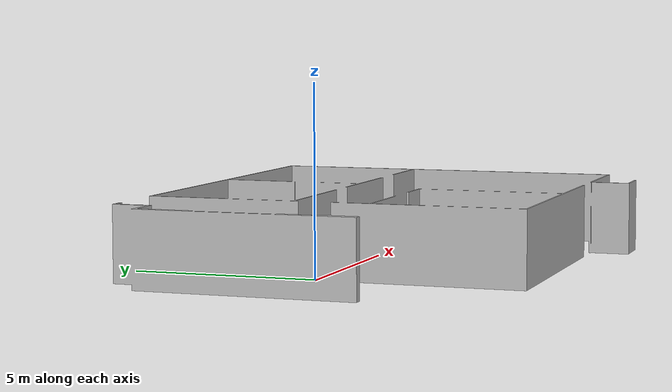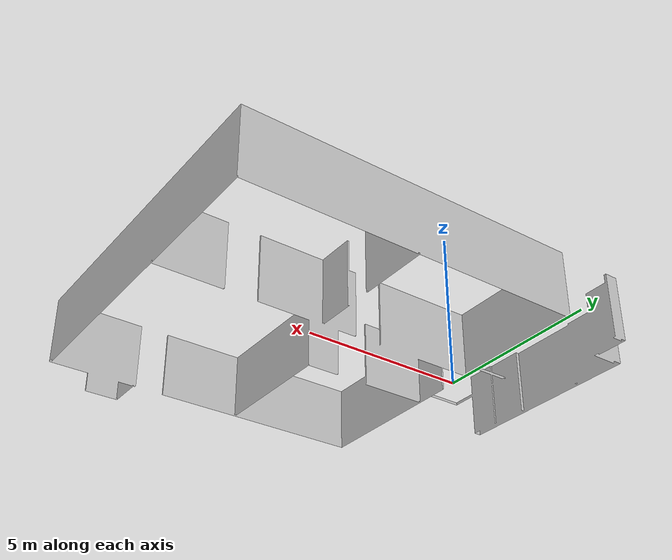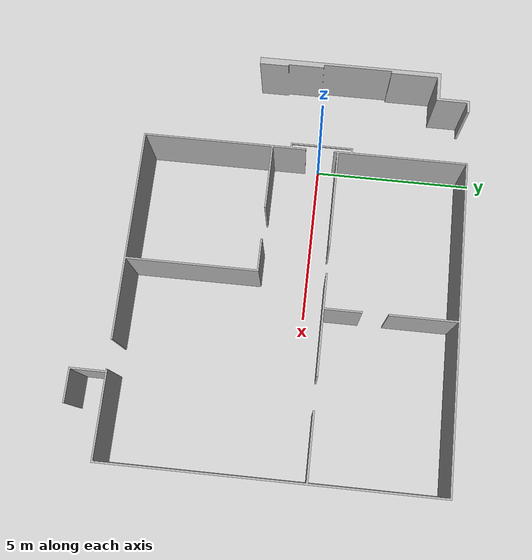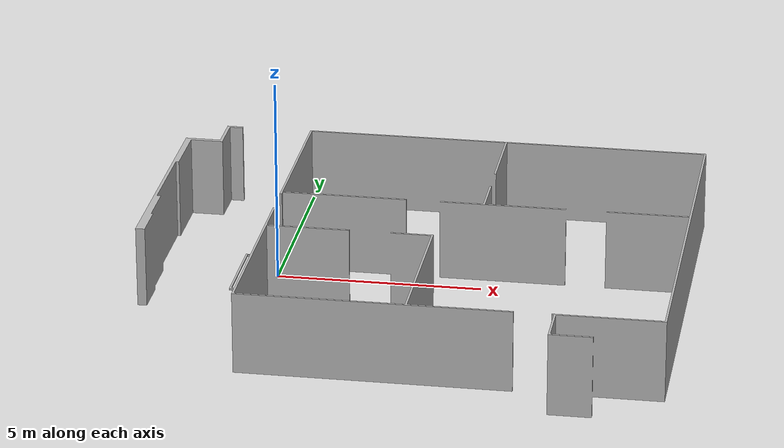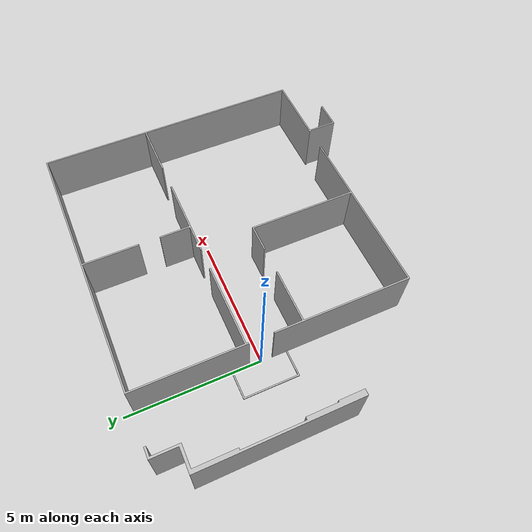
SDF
<?xml version="1.0"?>
<sdf version="1.6">
  <model name="rgo2019/walls">
    <link name="1_link">
      <collision name="1_col">
        <geometry>
          <mesh>
            <uri>model://rgo2019/walls/shape/heightmap.stl</uri>
          </mesh>
        </geometry>
      </collision>
      <visual name="1_vis">
        <geometry>
          <mesh>
            <uri>model://rgo2019/walls/shape/heightmap.stl</uri>
          </mesh>
        </geometry>
      </visual>
      <pose>0 0 0 0 0 0</pose>
    </link>
    <static>true</static>
  </model>
</sdf>
